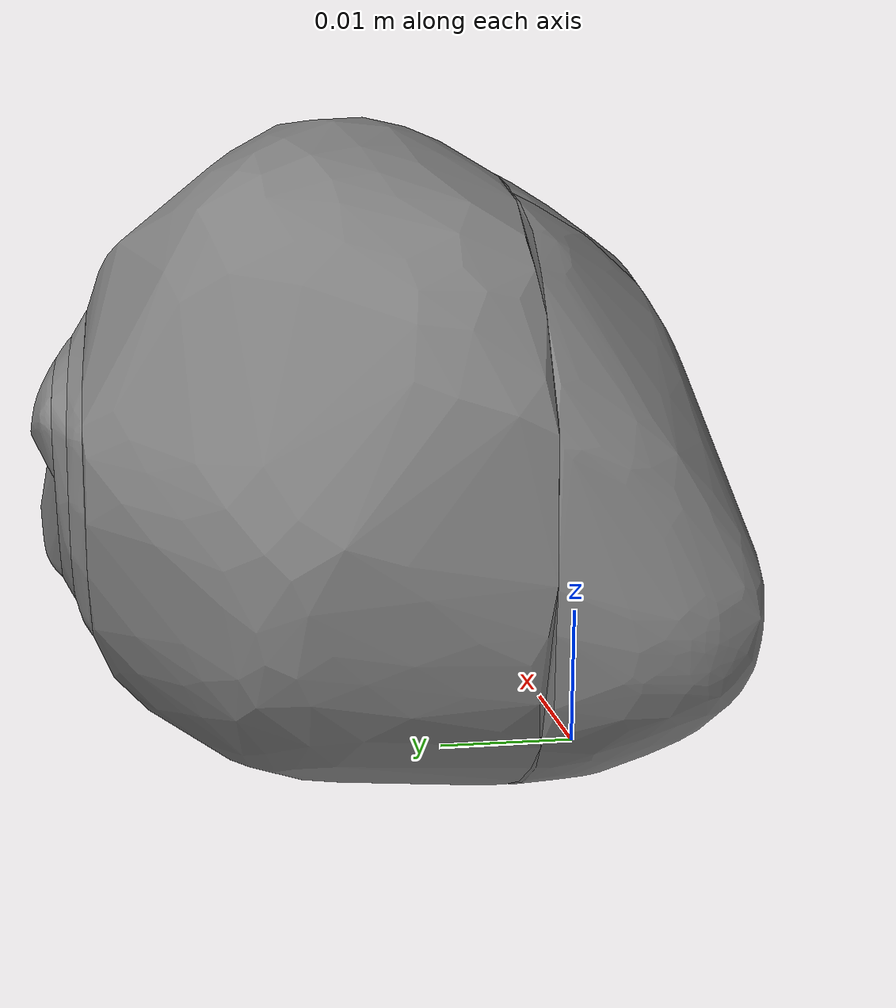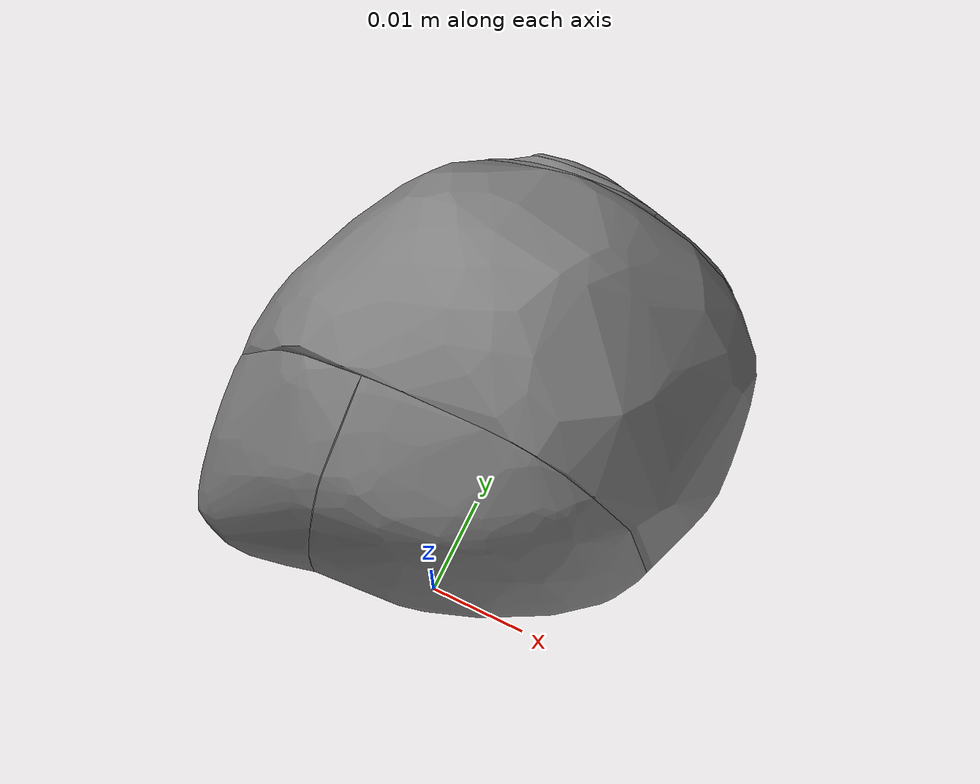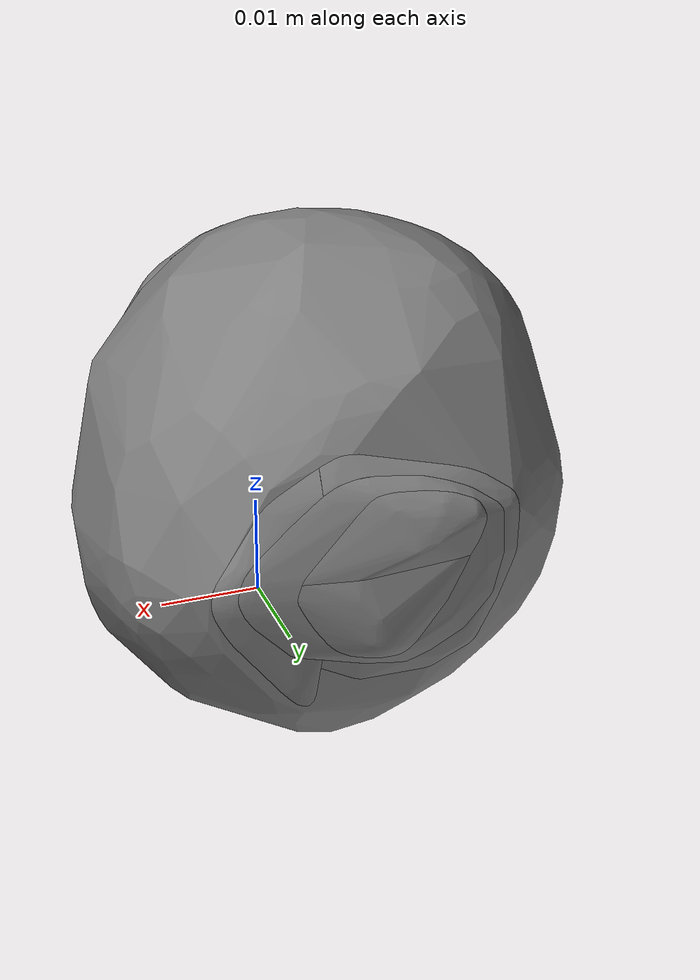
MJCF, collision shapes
<mujoco model="ycb_012_strawberry">
  <compiler meshdir="meshes" texturedir="meshes" angle="radian"/>
  <default>
    <default class="visual"><geom contype="0" conaffinity="0" group="2" density="0"/></default>
    <default class="collision"><geom group="3"/></default>
  </default>
  <asset>
    <texture name="ycb_012_strawberry_tex" type="2d" file="ycb_012_strawberry_texture.png"/>
    <material name="ycb_012_strawberry_mat" texture="ycb_012_strawberry_tex" specular="0.2" shininess="0.3"/>
    <mesh name="ycb_012_strawberry_visual" file="ycb_012_strawberry_visual.obj"/>
    <mesh name="ycb_012_strawberry_hull0" file="ycb_012_strawberry_hull0.obj"/>
    <mesh name="ycb_012_strawberry_hull1" file="ycb_012_strawberry_hull1.obj"/>
    <mesh name="ycb_012_strawberry_hull2" file="ycb_012_strawberry_hull2.obj"/>
    <mesh name="ycb_012_strawberry_hull3" file="ycb_012_strawberry_hull3.obj"/>
    <mesh name="ycb_012_strawberry_hull4" file="ycb_012_strawberry_hull4.obj"/>
    <mesh name="ycb_012_strawberry_hull5" file="ycb_012_strawberry_hull5.obj"/>
    <mesh name="ycb_012_strawberry_hull6" file="ycb_012_strawberry_hull6.obj"/>
    <mesh name="ycb_012_strawberry_hull7" file="ycb_012_strawberry_hull7.obj"/>
  </asset>
  <worldbody>
    <body name="object" pos="0 0 0">
      <freejoint name="object_free"/>
      <geom type="mesh" mesh="ycb_012_strawberry_visual" material="ycb_012_strawberry_mat" class="visual"/>
      <geom type="mesh" mesh="ycb_012_strawberry_hull0" class="collision"/>
      <geom type="mesh" mesh="ycb_012_strawberry_hull1" class="collision"/>
      <geom type="mesh" mesh="ycb_012_strawberry_hull2" class="collision"/>
      <geom type="mesh" mesh="ycb_012_strawberry_hull3" class="collision"/>
      <geom type="mesh" mesh="ycb_012_strawberry_hull4" class="collision"/>
      <geom type="mesh" mesh="ycb_012_strawberry_hull5" class="collision"/>
      <geom type="mesh" mesh="ycb_012_strawberry_hull6" class="collision"/>
      <geom type="mesh" mesh="ycb_012_strawberry_hull7" class="collision"/>
    </body>
  </worldbody>
</mujoco>
